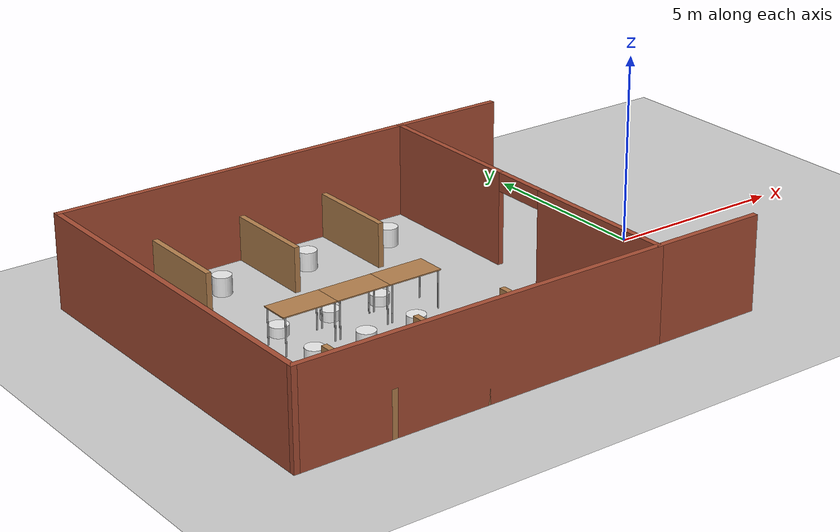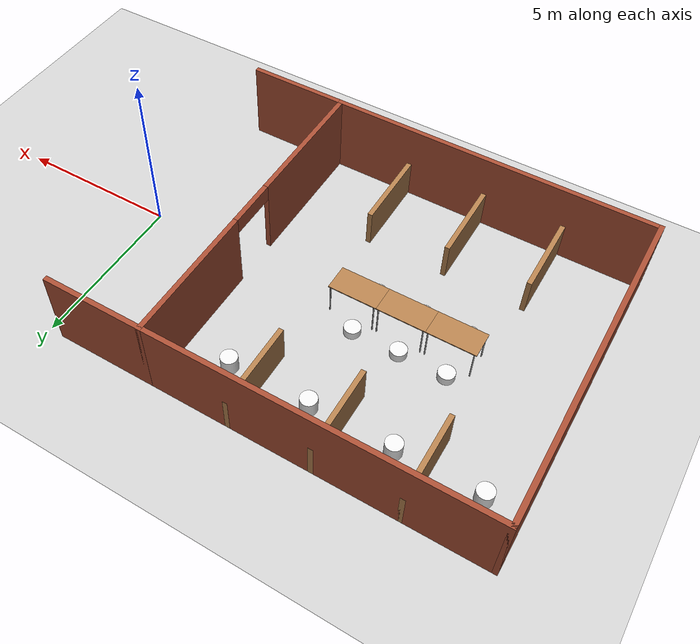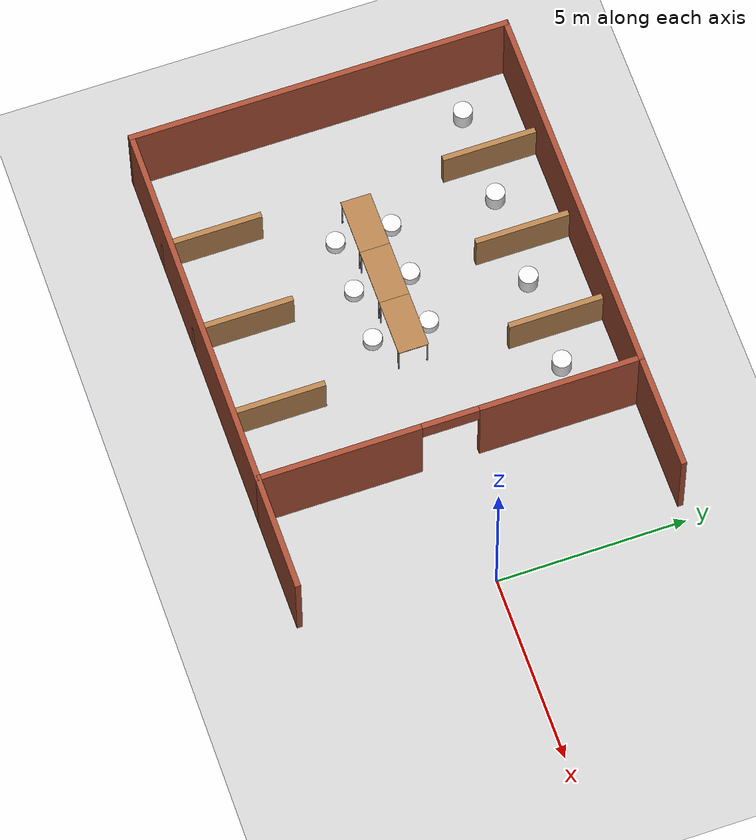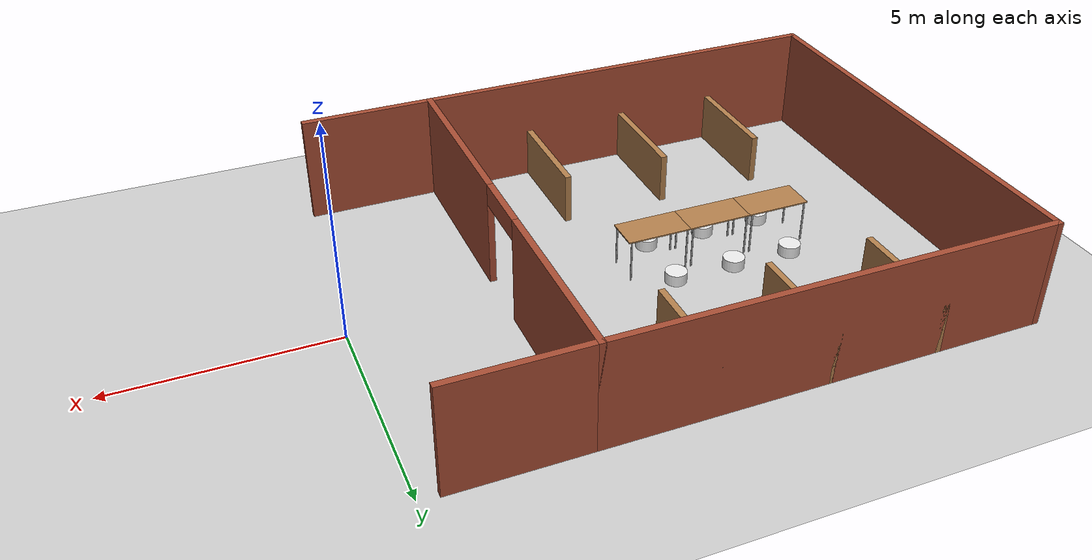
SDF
<sdf version="1.6">
 <world name="default">
  <model name="ground_plane">
   <static>1</static>
   <link name="link">
    <collision name="collision">
     <geometry><plane><normal>0 0 1</normal><size>100 100</size></plane></geometry>
     <surface>
      <contact><collide_bitmask>65535</collide_bitmask></contact>
      <friction><ode><mu>100</mu><mu2>50</mu2></ode></friction>
     </surface>
    </collision>
    <visual name="visual">
     <cast_shadows>0</cast_shadows>
     <geometry><plane><normal>0 0 1</normal><size>100 100</size></plane></geometry>
     <material>
      <script><uri>file://media/materials/scripts/gazebo.material</uri><name>Gazebo/Grey</name></script>
     </material>
    </visual>
   </link>
  </model>
  <model name="cafe2">
   <pose>-7 0 0 0 -0 0</pose>
   <link name="Wall_0">
    <pose>3.5 -0 0 0 -0 1.5708</pose>
    <visual name="Wall_0_Visual_0">
     <pose>-2.9125 0 1.25 0 -0 0</pose>
     <geometry><box><size>4.325 0.15 2.5</size></box></geometry>
     <material>
      <script><uri>file://media/materials/scripts/gazebo.material</uri><name>Gazebo/Bricks</name></script>
      <ambient>1 1 1 1</ambient>
     </material>
     <meta><layer>0</layer></meta>
    </visual>
    <collision name="Wall_0_Collision_0">
     <geometry><box><size>4.325 0.15 2.5</size></box></geometry>
     <pose>-2.9125 0 1.25 0 -0 0</pose>
    </collision>
    <visual name="Wall_0_Visual_1">
     <pose>2.9125 0 1.25 0 -0 0</pose>
     <geometry><box><size>4.325 0.15 2.5</size></box></geometry>
     <material>
      <script><uri>file://media/materials/scripts/gazebo.material</uri><name>Gazebo/Bricks</name></script>
      <ambient>1 1 1 1</ambient>
     </material>
     <meta><layer>0</layer></meta>
    </visual>
    <collision name="Wall_0_Collision_1">
     <geometry><box><size>4.325 0.15 2.5</size></box></geometry>
     <pose>2.9125 0 1.25 0 -0 0</pose>
    </collision>
    <visual name="Wall_0_Visual_2">
     <pose>0 0 2.25 0 -0 0</pose>
     <geometry><box><size>1.5 0.15 0.5</size></box></geometry>
     <material>
      <script><uri>file://media/materials/scripts/gazebo.material</uri><name>Gazebo/Bricks</name></script>
      <ambient>1 1 1 1</ambient>
     </material>
     <meta><layer>0</layer></meta>
    </visual>
    <collision name="Wall_0_Collision_2">
     <geometry><box><size>1.5 0.15 0.5</size></box></geometry>
     <pose>0 0 2.25 0 -0 0</pose>
    </collision>
   </link>
   <link name="Wall_1">
    <collision name="Wall_1_Collision">
     <geometry><box><size>3.15 0.15 2.5</size></box></geometry>
     <pose>0 0 1.25 0 -0 0</pose>
    </collision>
    <visual name="Wall_1_Visual">
     <pose>0 0 1.25 0 -0 0</pose>
     <geometry><box><size>3.15 0.15 2.5</size></box></geometry>
     <material>
      <script><uri>file://media/materials/scripts/gazebo.material</uri><name>Gazebo/Bricks</name></script>
      <ambient>1 1 1 1</ambient>
     </material>
     <meta><layer>0</layer></meta>
    </visual>
    <pose>5 5 0 0 -0 0</pose>
   </link>
   <link name="Wall_11">
    <collision name="Wall_11_Collision">
     <geometry><box><size>2.65 0.15 1.2</size></box></geometry>
     <pose>0 0 0.6 0 -0 0</pose>
    </collision>
    <visual name="Wall_11_Visual">
     <pose>0 0 0.6 0 -0 0</pose>
     <geometry><box><size>2.65 0.15 1.2</size></box></geometry>
     <material>
      <script><uri>file://media/materials/scripts/gazebo.material</uri><name>Gazebo/Wood</name></script>
      <ambient>1 1 1 1</ambient>
     </material>
     <meta><layer>0</layer></meta>
    </visual>
    <pose>-4 3.75 0 0 -0 -1.5708</pose>
   </link>
   <link name="Wall_13">
    <collision name="Wall_13_Collision">
     <geometry><box><size>2.65 0.15 1.2</size></box></geometry>
     <pose>0 0 0.6 0 -0 0</pose>
    </collision>
    <visual name="Wall_13_Visual">
     <pose>0 0 0.6 0 -0 0</pose>
     <geometry><box><size>2.65 0.15 1.2</size></box></geometry>
     <material>
      <script><uri>file://media/materials/scripts/gazebo.material</uri><name>Gazebo/Wood</name></script>
      <ambient>1 1 1 1</ambient>
     </material>
     <meta><layer>0</layer></meta>
    </visual>
    <pose>1 -3.75 0 0 -0 1.5708</pose>
   </link>
   <link name="Wall_15">
    <collision name="Wall_15_Collision">
     <geometry><box><size>2.65 0.15 1.2</size></box></geometry>
     <pose>0 0 0.6 0 -0 0</pose>
    </collision>
    <visual name="Wall_15_Visual">
     <pose>0 0 0.6 0 -0 0</pose>
     <geometry><box><size>2.65 0.15 1.2</size></box></geometry>
     <material>
      <script><uri>file://media/materials/scripts/gazebo.material</uri><name>Gazebo/Wood</name></script>
      <ambient>1 1 1 1</ambient>
     </material>
     <meta><layer>0</layer></meta>
    </visual>
    <pose>-1.5 -3.75 0 0 -0 1.5708</pose>
   </link>
   <link name="Wall_17">
    <collision name="Wall_17_Collision">
     <geometry><box><size>2.65 0.15 1.2</size></box></geometry>
     <pose>0 0 0.6 0 -0 0</pose>
    </collision>
    <visual name="Wall_17_Visual">
     <pose>0 0 0.6 0 -0 0</pose>
     <geometry><box><size>2.65 0.15 1.2</size></box></geometry>
     <material>
      <script><uri>file://media/materials/scripts/gazebo.material</uri><name>Gazebo/Wood</name></script>
      <ambient>1 1 1 1</ambient>
     </material>
     <meta><layer>0</layer></meta>
    </visual>
    <pose>-4 -3.75 0 0 -0 1.5708</pose>
   </link>
   <link name="Wall_19">
    <collision name="Wall_19_Collision">
     <geometry><box><size>2.65 0.15 1.2</size></box></geometry>
     <pose>0 0 0.6 0 -0 0</pose>
    </collision>
    <visual name="Wall_19_Visual">
     <pose>0 0 0.6 0 -0 0</pose>
     <geometry><box><size>2.65 0.15 1.2</size></box></geometry>
     <material>
      <script><uri>file://media/materials/scripts/gazebo.material</uri><name>Gazebo/Wood</name></script>
      <ambient>1 1 1 1</ambient>
     </material>
     <meta><layer>0</layer></meta>
    </visual>
    <pose>-1.5 3.75 0 0 -0 -1.5708</pose>
   </link>
   <link name="Wall_21">
    <collision name="Wall_21_Collision">
     <geometry><box><size>2.65 0.15 1.2</size></box></geometry>
     <pose>0 0 0.6 0 -0 0</pose>
    </collision>
    <visual name="Wall_21_Visual">
     <pose>0 0 0.6 0 -0 0</pose>
     <geometry><box><size>2.65 0.15 1.2</size></box></geometry>
     <material>
      <script><uri>file://media/materials/scripts/gazebo.material</uri><name>Gazebo/Wood</name></script>
      <ambient>1 1 1 1</ambient>
     </material>
     <meta><layer>0</layer></meta>
    </visual>
    <pose>1 3.75 0 0 -0 -1.5708</pose>
   </link>
   <link name="Wall_3">
    <collision name="Wall_3_Collision">
     <geometry><box><size>3.15 0.15 2.5</size></box></geometry>
     <pose>0 0 1.25 0 -0 0</pose>
    </collision>
    <visual name="Wall_3_Visual">
     <pose>0 0 1.25 0 -0 0</pose>
     <geometry><box><size>3.15 0.15 2.5</size></box></geometry>
     <material>
      <script><uri>file://media/materials/scripts/gazebo.material</uri><name>Gazebo/Bricks</name></script>
      <ambient>1 1 1 1</ambient>
     </material>
     <meta><layer>0</layer></meta>
    </visual>
    <pose>5 -5 0 0 -0 0</pose>
   </link>
   <link name="Wall_5">
    <collision name="Wall_5_Collision">
     <geometry><box><size>10.15 0.15 2.5</size></box></geometry>
     <pose>0 0 1.25 0 -0 0</pose>
    </collision>
    <visual name="Wall_5_Visual">
     <pose>0 0 1.25 0 -0 0</pose>
     <geometry><box><size>10.15 0.15 2.5</size></box></geometry>
     <material>
      <script><uri>file://media/materials/scripts/gazebo.material</uri><name>Gazebo/Bricks</name></script>
      <ambient>1 1 1 1</ambient>
     </material>
     <meta><layer>0</layer></meta>
    </visual>
    <pose>-1.5 -5 0 0 -0 3.14159</pose>
   </link>
   <link name="Wall_6">
    <collision name="Wall_6_Collision">
     <geometry><box><size>10.15 0.15 2.5</size></box></geometry>
     <pose>0 0 1.25 0 -0 0</pose>
    </collision>
    <visual name="Wall_6_Visual">
     <pose>0 0 1.25 0 -0 0</pose>
     <geometry><box><size>10.15 0.15 2.5</size></box></geometry>
     <material>
      <script><uri>file://media/materials/scripts/gazebo.material</uri><name>Gazebo/Bricks</name></script>
      <ambient>1 1 1 1</ambient>
     </material>
     <meta><layer>0</layer></meta>
    </visual>
    <pose>-6.5 -0 0 0 -0 1.5708</pose>
   </link>
   <link name="Wall_7">
    <collision name="Wall_7_Collision">
     <geometry><box><size>10.15 0.15 2.5</size></box></geometry>
     <pose>0 0 1.25 0 -0 0</pose>
    </collision>
    <visual name="Wall_7_Visual">
     <pose>0 0 1.25 0 -0 0</pose>
     <geometry><box><size>10.15 0.15 2.5</size></box></geometry>
     <material>
      <script><uri>file://media/materials/scripts/gazebo.material</uri><name>Gazebo/Bricks</name></script>
      <ambient>1 1 1 1</ambient>
     </material>
     <meta><layer>0</layer></meta>
    </visual>
    <pose>-1.5 5 0 0 -0 0</pose>
   </link>
   <static>1</static>
  </model>
  <model name="table_3">
   <static>1</static>
   <link name="link">
    <collision name="surface">
     <pose>0 0 1 0 -0 0</pose>
     <geometry><box><size>1.5 0.8 0.03</size></box></geometry>
     <surface><friction><ode><mu>0.6</mu><mu2>0.6</mu2></ode></friction></surface>
    </collision>
    <visual name="visual1">
     <pose>0 0 1 0 -0 0</pose>
     <geometry><box><size>1.5 0.8 0.03</size></box></geometry>
     <material>
      <script><uri>file://media/materials/scripts/gazebo.material</uri><name>Gazebo/Wood</name></script>
     </material>
    </visual>
    <collision name="front_left_leg">
     <pose>0.68 0.38 0.5 0 -0 0</pose>
     <geometry><cylinder><radius>0.02</radius><length>1</length></cylinder></geometry>
    </collision>
    <visual name="front_left_leg">
     <pose>0.68 0.38 0.5 0 -0 0</pose>
     <geometry><cylinder><radius>0.02</radius><length>1</length></cylinder></geometry>
     <material>
      <script><uri>file://media/materials/scripts/gazebo.material</uri><name>Gazebo/Grey</name></script>
     </material>
    </visual>
    <collision name="front_right_leg">
     <pose>0.68 -0.38 0.5 0 -0 0</pose>
     <geometry><cylinder><radius>0.02</radius><length>1</length></cylinder></geometry>
    </collision>
    <visual name="front_right_leg">
     <pose>0.68 -0.38 0.5 0 -0 0</pose>
     <geometry><cylinder><radius>0.02</radius><length>1</length></cylinder></geometry>
     <material>
      <script><uri>file://media/materials/scripts/gazebo.material</uri><name>Gazebo/Grey</name></script>
     </material>
    </visual>
    <collision name="back_right_leg">
     <pose>-0.68 -0.38 0.5 0 -0 0</pose>
     <geometry><cylinder><radius>0.02</radius><length>1</length></cylinder></geometry>
    </collision>
    <visual name="back_right_leg">
     <pose>-0.68 -0.38 0.5 0 -0 0</pose>
     <geometry><cylinder><radius>0.02</radius><length>1</length></cylinder></geometry>
     <material>
      <script><uri>file://media/materials/scripts/gazebo.material</uri><name>Gazebo/Grey</name></script>
     </material>
    </visual>
    <collision name="back_left_leg">
     <pose>-0.68 0.38 0.5 0 -0 0</pose>
     <geometry><cylinder><radius>0.02</radius><length>1</length></cylinder></geometry>
    </collision>
    <visual name="back_left_leg">
     <pose>-0.68 0.38 0.5 0 -0 0</pose>
     <geometry><cylinder><radius>0.02</radius><length>1</length></cylinder></geometry>
     <material>
      <script><uri>file://media/materials/scripts/gazebo.material</uri><name>Gazebo/Grey</name></script>
     </material>
    </visual>
   </link>
   <pose>-7 0 0 0 -0 0</pose>
  </model>
  <model name="table_4">
   <static>1</static>
   <link name="link">
    <collision name="surface">
     <pose>0 0 1 0 -0 0</pose>
     <geometry><box><size>1.5 0.8 0.03</size></box></geometry>
     <surface><friction><ode><mu>0.6</mu><mu2>0.6</mu2></ode></friction></surface>
    </collision>
    <visual name="visual1">
     <pose>0 0 1 0 -0 0</pose>
     <geometry><box><size>1.5 0.8 0.03</size></box></geometry>
     <material>
      <script><uri>file://media/materials/scripts/gazebo.material</uri><name>Gazebo/Wood</name></script>
     </material>
    </visual>
    <collision name="front_left_leg">
     <pose>0.68 0.38 0.5 0 -0 0</pose>
     <geometry><cylinder><radius>0.02</radius><length>1</length></cylinder></geometry>
    </collision>
    <visual name="front_left_leg">
     <pose>0.68 0.38 0.5 0 -0 0</pose>
     <geometry><cylinder><radius>0.02</radius><length>1</length></cylinder></geometry>
     <material>
      <script><uri>file://media/materials/scripts/gazebo.material</uri><name>Gazebo/Grey</name></script>
     </material>
    </visual>
    <collision name="front_right_leg">
     <pose>0.68 -0.38 0.5 0 -0 0</pose>
     <geometry><cylinder><radius>0.02</radius><length>1</length></cylinder></geometry>
    </collision>
    <visual name="front_right_leg">
     <pose>0.68 -0.38 0.5 0 -0 0</pose>
     <geometry><cylinder><radius>0.02</radius><length>1</length></cylinder></geometry>
     <material>
      <script><uri>file://media/materials/scripts/gazebo.material</uri><name>Gazebo/Grey</name></script>
     </material>
    </visual>
    <collision name="back_right_leg">
     <pose>-0.68 -0.38 0.5 0 -0 0</pose>
     <geometry><cylinder><radius>0.02</radius><length>1</length></cylinder></geometry>
    </collision>
    <visual name="back_right_leg">
     <pose>-0.68 -0.38 0.5 0 -0 0</pose>
     <geometry><cylinder><radius>0.02</radius><length>1</length></cylinder></geometry>
     <material>
      <script><uri>file://media/materials/scripts/gazebo.material</uri><name>Gazebo/Grey</name></script>
     </material>
    </visual>
    <collision name="back_left_leg">
     <pose>-0.68 0.38 0.5 0 -0 0</pose>
     <geometry><cylinder><radius>0.02</radius><length>1</length></cylinder></geometry>
    </collision>
    <visual name="back_left_leg">
     <pose>-0.68 0.38 0.5 0 -0 0</pose>
     <geometry><cylinder><radius>0.02</radius><length>1</length></cylinder></geometry>
     <material>
      <script><uri>file://media/materials/scripts/gazebo.material</uri><name>Gazebo/Grey</name></script>
     </material>
    </visual>
   </link>
   <pose>-8.5 0 0 0 -0 0</pose>
  </model>
  <model name="table_5">
   <static>1</static>
   <link name="link">
    <collision name="surface">
     <pose>0 0 1 0 -0 0</pose>
     <geometry><box><size>1.5 0.8 0.03</size></box></geometry>
     <surface><friction><ode><mu>0.6</mu><mu2>0.6</mu2></ode></friction></surface>
    </collision>
    <visual name="visual1">
     <pose>0 0 1 0 -0 0</pose>
     <geometry><box><size>1.5 0.8 0.03</size></box></geometry>
     <material>
      <script><uri>file://media/materials/scripts/gazebo.material</uri><name>Gazebo/Wood</name></script>
     </material>
    </visual>
    <collision name="front_left_leg">
     <pose>0.68 0.38 0.5 0 -0 0</pose>
     <geometry><cylinder><radius>0.02</radius><length>1</length></cylinder></geometry>
    </collision>
    <visual name="front_left_leg">
     <pose>0.68 0.38 0.5 0 -0 0</pose>
     <geometry><cylinder><radius>0.02</radius><length>1</length></cylinder></geometry>
     <material>
      <script><uri>file://media/materials/scripts/gazebo.material</uri><name>Gazebo/Grey</name></script>
     </material>
    </visual>
    <collision name="front_right_leg">
     <pose>0.68 -0.38 0.5 0 -0 0</pose>
     <geometry><cylinder><radius>0.02</radius><length>1</length></cylinder></geometry>
    </collision>
    <visual name="front_right_leg">
     <pose>0.68 -0.38 0.5 0 -0 0</pose>
     <geometry><cylinder><radius>0.02</radius><length>1</length></cylinder></geometry>
     <material>
      <script><uri>file://media/materials/scripts/gazebo.material</uri><name>Gazebo/Grey</name></script>
     </material>
    </visual>
    <collision name="back_right_leg">
     <pose>-0.68 -0.38 0.5 0 -0 0</pose>
     <geometry><cylinder><radius>0.02</radius><length>1</length></cylinder></geometry>
    </collision>
    <visual name="back_right_leg">
     <pose>-0.68 -0.38 0.5 0 -0 0</pose>
     <geometry><cylinder><radius>0.02</radius><length>1</length></cylinder></geometry>
     <material>
      <script><uri>file://media/materials/scripts/gazebo.material</uri><name>Gazebo/Grey</name></script>
     </material>
    </visual>
    <collision name="back_left_leg">
     <pose>-0.68 0.38 0.5 0 -0 0</pose>
     <geometry><cylinder><radius>0.02</radius><length>1</length></cylinder></geometry>
    </collision>
    <visual name="back_left_leg">
     <pose>-0.68 0.38 0.5 0 -0 0</pose>
     <geometry><cylinder><radius>0.02</radius><length>1</length></cylinder></geometry>
     <material>
      <script><uri>file://media/materials/scripts/gazebo.material</uri><name>Gazebo/Grey</name></script>
     </material>
    </visual>
   </link>
   <pose>-10 0 0 0 -0 0</pose>
  </model>
  <model name="chair6">
   <link name="link_1">
    <inertial>
     <mass>1</mass>
     <inertia><ixx>0.145833</ixx><ixy>0</ixy><ixz>0</ixz><iyy>0.145833</iyy><iyz>0</iyz><izz>0.125</izz></inertia>
    </inertial>
    <visual name="visual">
     <geometry><cylinder><radius>0.25</radius><length>0.5</length></cylinder></geometry>
     <material>
      <lighting>1</lighting>
      <script><uri>file://media/materials/scripts/gazebo.material</uri><name>Gazebo/White</name></script>
      <shader type="vertex"><normal_map>__default__</normal_map></shader>
      <ambient>0.9 0.7 0.5 1</ambient>
      <diffuse>0.7 0.7 0.7 1</diffuse>
      <specular>0.01 0.01 0.01 1</specular>
      <emissive>0 0 0 1</emissive>
     </material>
    </visual>
    <collision name="collision">
     <geometry><cylinder><radius>0.25</radius><length>0.5</length></cylinder></geometry>
     <surface>
      <friction>
       <ode><mu>1</mu><mu2>1</mu2><fdir1>0 0 0</fdir1><slip1>0</slip1><slip2>0</slip2></ode>
       <torsional>
        <coefficient>1</coefficient>
        <patch_radius>0</patch_radius>
        <surface_radius>0</surface_radius>
        <use_patch_radius>1</use_patch_radius>
        <ode><slip>0</slip></ode>
       </torsional>
      </friction>
      <bounce><restitution_coefficient>0</restitution_coefficient><threshold>1e+06</threshold></bounce>
      <contact>
       <collide_without_contact>0</collide_without_contact>
       <collide_without_contact_bitmask>1</collide_without_contact_bitmask>
       <collide_bitmask>1</collide_bitmask>
       <ode>
        <soft_cfm>0</soft_cfm>
        <soft_erp>0.2</soft_erp>
        <kp>1e+13</kp>
        <kd>1</kd>
        <max_vel>0.01</max_vel>
        <min_depth>0</min_depth>
       </ode>
       <bullet>
        <split_impulse>1</split_impulse>
        <split_impulse_penetration_threshold>-0.01</split_impulse_penetration_threshold>
        <soft_cfm>0</soft_cfm>
        <soft_erp>0.2</soft_erp>
        <kp>1e+13</kp>
        <kd>1</kd>
       </bullet>
      </contact>
     </surface>
    </collision>
   </link>
   <link name="link_1_clone">
    <inertial>
     <mass>1</mass>
     <inertia><ixx>0.145833</ixx><ixy>0</ixy><ixz>0</ixz><iyy>0.145833</iyy><iyz>0</iyz><izz>0.125</izz></inertia>
    </inertial>
    <pose>-2.5 -0 0 0 -0 0</pose>
    <visual name="visual">
     <geometry><cylinder><radius>0.25</radius><length>0.5</length></cylinder></geometry>
     <material>
      <lighting>1</lighting>
      <script><uri>file://media/materials/scripts/gazebo.material</uri><name>Gazebo/White</name></script>
      <shader type="vertex"><normal_map>__default__</normal_map></shader>
      <ambient>0.9 0.7 0.5 1</ambient>
      <diffuse>0.7 0.7 0.7 1</diffuse>
      <specular>0.01 0.01 0.01 1</specular>
      <emissive>0 0 0 1</emissive>
     </material>
    </visual>
    <collision name="collision">
     <geometry><cylinder><radius>0.25</radius><length>0.5</length></cylinder></geometry>
     <surface>
      <friction>
       <ode><mu>1</mu><mu2>1</mu2><fdir1>0 0 0</fdir1><slip1>0</slip1><slip2>0</slip2></ode>
       <torsional>
        <coefficient>1</coefficient>
        <patch_radius>0</patch_radius>
        <surface_radius>0</surface_radius>
        <use_patch_radius>1</use_patch_radius>
        <ode><slip>0</slip></ode>
       </torsional>
      </friction>
      <bounce><restitution_coefficient>0</restitution_coefficient><threshold>1e+06</threshold></bounce>
      <contact>
       <collide_without_contact>0</collide_without_contact>
       <collide_without_contact_bitmask>1</collide_without_contact_bitmask>
       <collide_bitmask>1</collide_bitmask>
       <ode>
        <soft_cfm>0</soft_cfm>
        <soft_erp>0.2</soft_erp>
        <kp>1e+13</kp>
        <kd>1</kd>
        <max_vel>0.01</max_vel>
        <min_depth>0</min_depth>
       </ode>
       <bullet>
        <split_impulse>1</split_impulse>
        <split_impulse_penetration_threshold>-0.01</split_impulse_penetration_threshold>
        <soft_cfm>0</soft_cfm>
        <soft_erp>0.2</soft_erp>
        <kp>1e+13</kp>
        <kd>1</kd>
       </bullet>
      </contact>
     </surface>
    </collision>
   </link>
   <link name="link_1_clone_0_clone">
    <inertial>
     <mass>1</mass>
     <inertia><ixx>0.145833</ixx><ixy>0</ixy><ixz>0</ixz><iyy>0.145833</iyy><iyz>0</iyz><izz>0.125</izz></inertia>
    </inertial>
    <pose>-5 -0 0 0 -0 0</pose>
    <visual name="visual">
     <geometry><cylinder><radius>0.25</radius><length>0.5</length></cylinder></geometry>
     <material>
      <lighting>1</lighting>
      <script><uri>file://media/materials/scripts/gazebo.material</uri><name>Gazebo/White</name></script>
      <shader type="vertex"><normal_map>__default__</normal_map></shader>
      <ambient>0.9 0.7 0.5 1</ambient>
      <diffuse>0.7 0.7 0.7 1</diffuse>
      <specular>0.01 0.01 0.01 1</specular>
      <emissive>0 0 0 1</emissive>
     </material>
    </visual>
    <collision name="collision">
     <geometry><cylinder><radius>0.25</radius><length>0.5</length></cylinder></geometry>
     <surface>
      <friction>
       <ode><mu>1</mu><mu2>1</mu2><fdir1>0 0 0</fdir1><slip1>0</slip1><slip2>0</slip2></ode>
       <torsional>
        <coefficient>1</coefficient>
        <patch_radius>0</patch_radius>
        <surface_radius>0</surface_radius>
        <use_patch_radius>1</use_patch_radius>
        <ode><slip>0</slip></ode>
       </torsional>
      </friction>
      <bounce><restitution_coefficient>0</restitution_coefficient><threshold>1e+06</threshold></bounce>
      <contact>
       <collide_without_contact>0</collide_without_contact>
       <collide_without_contact_bitmask>1</collide_without_contact_bitmask>
       <collide_bitmask>1</collide_bitmask>
       <ode>
        <soft_cfm>0</soft_cfm>
        <soft_erp>0.2</soft_erp>
        <kp>1e+13</kp>
        <kd>1</kd>
        <max_vel>0.01</max_vel>
        <min_depth>0</min_depth>
       </ode>
       <bullet>
        <split_impulse>1</split_impulse>
        <split_impulse_penetration_threshold>-0.01</split_impulse_penetration_threshold>
        <soft_cfm>0</soft_cfm>
        <soft_erp>0.2</soft_erp>
        <kp>1e+13</kp>
        <kd>1</kd>
       </bullet>
      </contact>
     </surface>
    </collision>
   </link>
   <link name="link_1_clone_0_clone_clone">
    <inertial>
     <mass>1</mass>
     <inertia><ixx>0.145833</ixx><ixy>0</ixy><ixz>0</ixz><iyy>0.145833</iyy><iyz>0</iyz><izz>0.125</izz></inertia>
    </inertial>
    <pose>-7.5 -0 -0 0 -0 0</pose>
    <visual name="visual">
     <geometry><cylinder><radius>0.25</radius><length>0.5</length></cylinder></geometry>
     <material>
      <lighting>1</lighting>
      <script><uri>file://media/materials/scripts/gazebo.material</uri><name>Gazebo/White</name></script>
      <shader type="vertex"><normal_map>__default__</normal_map></shader>
      <ambient>0.9 0.7 0.5 1</ambient>
      <diffuse>0.7 0.7 0.7 1</diffuse>
      <specular>0.01 0.01 0.01 1</specular>
      <emissive>0 0 0 1</emissive>
     </material>
    </visual>
    <collision name="collision">
     <geometry><cylinder><radius>0.25</radius><length>0.5</length></cylinder></geometry>
     <surface>
      <friction>
       <ode><mu>1</mu><mu2>1</mu2><fdir1>0 0 0</fdir1><slip1>0</slip1><slip2>0</slip2></ode>
       <torsional>
        <coefficient>1</coefficient>
        <patch_radius>0</patch_radius>
        <surface_radius>0</surface_radius>
        <use_patch_radius>1</use_patch_radius>
        <ode><slip>0</slip></ode>
       </torsional>
      </friction>
      <bounce><restitution_coefficient>0</restitution_coefficient><threshold>1e+06</threshold></bounce>
      <contact>
       <collide_without_contact>0</collide_without_contact>
       <collide_without_contact_bitmask>1</collide_without_contact_bitmask>
       <collide_bitmask>1</collide_bitmask>
       <ode>
        <soft_cfm>0</soft_cfm>
        <soft_erp>0.2</soft_erp>
        <kp>1e+13</kp>
        <kd>1</kd>
        <max_vel>0.01</max_vel>
        <min_depth>0</min_depth>
       </ode>
       <bullet>
        <split_impulse>1</split_impulse>
        <split_impulse_penetration_threshold>-0.01</split_impulse_penetration_threshold>
        <soft_cfm>0</soft_cfm>
        <soft_erp>0.2</soft_erp>
        <kp>1e+13</kp>
        <kd>1</kd>
       </bullet>
      </contact>
     </surface>
    </collision>
   </link>
   <static>0</static>
   <pose>-5 3.5 0.249991 0 -0 0</pose>
  </model>
  <model name="chair3_2">
   <link name="link_1">
    <inertial>
     <mass>1</mass>
     <inertia><ixx>0.145833</ixx><ixy>0</ixy><ixz>0</ixz><iyy>0.145833</iyy><iyz>0</iyz><izz>0.125</izz></inertia>
    </inertial>
    <visual name="visual">
     <geometry><cylinder><radius>0.25</radius><length>0.5</length></cylinder></geometry>
     <material>
      <lighting>1</lighting>
      <script><uri>file://media/materials/scripts/gazebo.material</uri><name>Gazebo/White</name></script>
      <shader type="vertex"><normal_map>__default__</normal_map></shader>
      <ambient>0.9 0.7 0.5 1</ambient>
      <diffuse>0.7 0.7 0.7 1</diffuse>
      <specular>0.01 0.01 0.01 1</specular>
      <emissive>0 0 0 1</emissive>
     </material>
    </visual>
    <collision name="collision">
     <geometry><cylinder><radius>0.25</radius><length>0.5</length></cylinder></geometry>
     <surface>
      <friction>
       <ode><mu>1</mu><mu2>1</mu2><fdir1>0 0 0</fdir1><slip1>0</slip1><slip2>0</slip2></ode>
       <torsional>
        <coefficient>1</coefficient>
        <patch_radius>0</patch_radius>
        <surface_radius>0</surface_radius>
        <use_patch_radius>1</use_patch_radius>
        <ode><slip>0</slip></ode>
       </torsional>
      </friction>
      <bounce><restitution_coefficient>0</restitution_coefficient><threshold>1e+06</threshold></bounce>
      <contact>
       <collide_without_contact>0</collide_without_contact>
       <collide_without_contact_bitmask>1</collide_without_contact_bitmask>
       <collide_bitmask>1</collide_bitmask>
       <ode>
        <soft_cfm>0</soft_cfm>
        <soft_erp>0.2</soft_erp>
        <kp>1e+13</kp>
        <kd>1</kd>
        <max_vel>0.01</max_vel>
        <min_depth>0</min_depth>
       </ode>
       <bullet>
        <split_impulse>1</split_impulse>
        <split_impulse_penetration_threshold>-0.01</split_impulse_penetration_threshold>
        <soft_cfm>0</soft_cfm>
        <soft_erp>0.2</soft_erp>
        <kp>1e+13</kp>
        <kd>1</kd>
       </bullet>
      </contact>
     </surface>
    </collision>
   </link>
   <link name="link_1_clone">
    <inertial>
     <mass>1</mass>
     <inertia><ixx>0.145833</ixx><ixy>0</ixy><ixz>0</ixz><iyy>0.145833</iyy><iyz>0</iyz><izz>0.125</izz></inertia>
    </inertial>
    <pose>0 -1.5 0 0 -0 0</pose>
    <visual name="visual">
     <geometry><cylinder><radius>0.25</radius><length>0.5</length></cylinder></geometry>
     <material>
      <lighting>1</lighting>
      <script><uri>file://media/materials/scripts/gazebo.material</uri><name>Gazebo/White</name></script>
      <shader type="vertex"><normal_map>__default__</normal_map></shader>
      <ambient>0.9 0.7 0.5 1</ambient>
      <diffuse>0.7 0.7 0.7 1</diffuse>
      <specular>0.01 0.01 0.01 1</specular>
      <emissive>0 0 0 1</emissive>
     </material>
    </visual>
    <collision name="collision">
     <geometry><cylinder><radius>0.25</radius><length>0.5</length></cylinder></geometry>
     <surface>
      <friction>
       <ode><mu>1</mu><mu2>1</mu2><fdir1>0 0 0</fdir1><slip1>0</slip1><slip2>0</slip2></ode>
       <torsional>
        <coefficient>1</coefficient>
        <patch_radius>0</patch_radius>
        <surface_radius>0</surface_radius>
        <use_patch_radius>1</use_patch_radius>
        <ode><slip>0</slip></ode>
       </torsional>
      </friction>
      <bounce><restitution_coefficient>0</restitution_coefficient><threshold>1e+06</threshold></bounce>
      <contact>
       <collide_without_contact>0</collide_without_contact>
       <collide_without_contact_bitmask>1</collide_without_contact_bitmask>
       <collide_bitmask>1</collide_bitmask>
       <ode>
        <soft_cfm>0</soft_cfm>
        <soft_erp>0.2</soft_erp>
        <kp>1e+13</kp>
        <kd>1</kd>
        <max_vel>0.01</max_vel>
        <min_depth>0</min_depth>
       </ode>
       <bullet>
        <split_impulse>1</split_impulse>
        <split_impulse_penetration_threshold>-0.01</split_impulse_penetration_threshold>
        <soft_cfm>0</soft_cfm>
        <soft_erp>0.2</soft_erp>
        <kp>1e+13</kp>
        <kd>1</kd>
       </bullet>
      </contact>
     </surface>
    </collision>
   </link>
   <static>0</static>
   <pose>-7.25 0.75 0 0 -0 0</pose>
  </model>
  <model name="chair3_3">
   <link name="link_1">
    <inertial>
     <mass>1</mass>
     <inertia><ixx>0.145833</ixx><ixy>0</ixy><ixz>0</ixz><iyy>0.145833</iyy><iyz>0</iyz><izz>0.125</izz></inertia>
    </inertial>
    <visual name="visual">
     <geometry><cylinder><radius>0.25</radius><length>0.5</length></cylinder></geometry>
     <material>
      <lighting>1</lighting>
      <script><uri>file://media/materials/scripts/gazebo.material</uri><name>Gazebo/White</name></script>
      <shader type="vertex"><normal_map>__default__</normal_map></shader>
      <ambient>0.9 0.7 0.5 1</ambient>
      <diffuse>0.7 0.7 0.7 1</diffuse>
      <specular>0.01 0.01 0.01 1</specular>
      <emissive>0 0 0 1</emissive>
     </material>
    </visual>
    <collision name="collision">
     <geometry><cylinder><radius>0.25</radius><length>0.5</length></cylinder></geometry>
     <surface>
      <friction>
       <ode><mu>1</mu><mu2>1</mu2><fdir1>0 0 0</fdir1><slip1>0</slip1><slip2>0</slip2></ode>
       <torsional>
        <coefficient>1</coefficient>
        <patch_radius>0</patch_radius>
        <surface_radius>0</surface_radius>
        <use_patch_radius>1</use_patch_radius>
        <ode><slip>0</slip></ode>
       </torsional>
      </friction>
      <bounce><restitution_coefficient>0</restitution_coefficient><threshold>1e+06</threshold></bounce>
      <contact>
       <collide_without_contact>0</collide_without_contact>
       <collide_without_contact_bitmask>1</collide_without_contact_bitmask>
       <collide_bitmask>1</collide_bitmask>
       <ode>
        <soft_cfm>0</soft_cfm>
        <soft_erp>0.2</soft_erp>
        <kp>1e+13</kp>
        <kd>1</kd>
        <max_vel>0.01</max_vel>
        <min_depth>0</min_depth>
       </ode>
       <bullet>
        <split_impulse>1</split_impulse>
        <split_impulse_penetration_threshold>-0.01</split_impulse_penetration_threshold>
        <soft_cfm>0</soft_cfm>
        <soft_erp>0.2</soft_erp>
        <kp>1e+13</kp>
        <kd>1</kd>
       </bullet>
      </contact>
     </surface>
    </collision>
   </link>
   <link name="link_1_clone">
    <inertial>
     <mass>1</mass>
     <inertia><ixx>0.145833</ixx><ixy>0</ixy><ixz>0</ixz><iyy>0.145833</iyy><iyz>0</iyz><izz>0.125</izz></inertia>
    </inertial>
    <pose>0 -1.5 0 0 -0 0</pose>
    <visual name="visual">
     <geometry><cylinder><radius>0.25</radius><length>0.5</length></cylinder></geometry>
     <material>
      <lighting>1</lighting>
      <script><uri>file://media/materials/scripts/gazebo.material</uri><name>Gazebo/White</name></script>
      <shader type="vertex"><normal_map>__default__</normal_map></shader>
      <ambient>0.9 0.7 0.5 1</ambient>
      <diffuse>0.7 0.7 0.7 1</diffuse>
      <specular>0.01 0.01 0.01 1</specular>
      <emissive>0 0 0 1</emissive>
     </material>
    </visual>
    <collision name="collision">
     <geometry><cylinder><radius>0.25</radius><length>0.5</length></cylinder></geometry>
     <surface>
      <friction>
       <ode><mu>1</mu><mu2>1</mu2><fdir1>0 0 0</fdir1><slip1>0</slip1><slip2>0</slip2></ode>
       <torsional>
        <coefficient>1</coefficient>
        <patch_radius>0</patch_radius>
        <surface_radius>0</surface_radius>
        <use_patch_radius>1</use_patch_radius>
        <ode><slip>0</slip></ode>
       </torsional>
      </friction>
      <bounce><restitution_coefficient>0</restitution_coefficient><threshold>1e+06</threshold></bounce>
      <contact>
       <collide_without_contact>0</collide_without_contact>
       <collide_without_contact_bitmask>1</collide_without_contact_bitmask>
       <collide_bitmask>1</collide_bitmask>
       <ode>
        <soft_cfm>0</soft_cfm>
        <soft_erp>0.2</soft_erp>
        <kp>1e+13</kp>
        <kd>1</kd>
        <max_vel>0.01</max_vel>
        <min_depth>0</min_depth>
       </ode>
       <bullet>
        <split_impulse>1</split_impulse>
        <split_impulse_penetration_threshold>-0.01</split_impulse_penetration_threshold>
        <soft_cfm>0</soft_cfm>
        <soft_erp>0.2</soft_erp>
        <kp>1e+13</kp>
        <kd>1</kd>
       </bullet>
      </contact>
     </surface>
    </collision>
   </link>
   <static>0</static>
   <pose>-8.7 0.75 0 0 -0 0</pose>
  </model>
  <model name="chair3_4">
   <link name="link_1">
    <inertial>
     <mass>1</mass>
     <inertia><ixx>0.145833</ixx><ixy>0</ixy><ixz>0</ixz><iyy>0.145833</iyy><iyz>0</iyz><izz>0.125</izz></inertia>
    </inertial>
    <visual name="visual">
     <geometry><cylinder><radius>0.25</radius><length>0.5</length></cylinder></geometry>
     <material>
      <lighting>1</lighting>
      <script><uri>file://media/materials/scripts/gazebo.material</uri><name>Gazebo/White</name></script>
      <shader type="vertex"><normal_map>__default__</normal_map></shader>
      <ambient>0.9 0.7 0.5 1</ambient>
      <diffuse>0.7 0.7 0.7 1</diffuse>
      <specular>0.01 0.01 0.01 1</specular>
      <emissive>0 0 0 1</emissive>
     </material>
    </visual>
    <collision name="collision">
     <geometry><cylinder><radius>0.25</radius><length>0.5</length></cylinder></geometry>
     <surface>
      <friction>
       <ode><mu>1</mu><mu2>1</mu2><fdir1>0 0 0</fdir1><slip1>0</slip1><slip2>0</slip2></ode>
       <torsional>
        <coefficient>1</coefficient>
        <patch_radius>0</patch_radius>
        <surface_radius>0</surface_radius>
        <use_patch_radius>1</use_patch_radius>
        <ode><slip>0</slip></ode>
       </torsional>
      </friction>
      <bounce><restitution_coefficient>0</restitution_coefficient><threshold>1e+06</threshold></bounce>
      <contact>
       <collide_without_contact>0</collide_without_contact>
       <collide_without_contact_bitmask>1</collide_without_contact_bitmask>
       <collide_bitmask>1</collide_bitmask>
       <ode>
        <soft_cfm>0</soft_cfm>
        <soft_erp>0.2</soft_erp>
        <kp>1e+13</kp>
        <kd>1</kd>
        <max_vel>0.01</max_vel>
        <min_depth>0</min_depth>
       </ode>
       <bullet>
        <split_impulse>1</split_impulse>
        <split_impulse_penetration_threshold>-0.01</split_impulse_penetration_threshold>
        <soft_cfm>0</soft_cfm>
        <soft_erp>0.2</soft_erp>
        <kp>1e+13</kp>
        <kd>1</kd>
       </bullet>
      </contact>
     </surface>
    </collision>
   </link>
   <link name="link_1_clone">
    <inertial>
     <mass>1</mass>
     <inertia><ixx>0.145833</ixx><ixy>0</ixy><ixz>0</ixz><iyy>0.145833</iyy><iyz>0</iyz><izz>0.125</izz></inertia>
    </inertial>
    <pose>0 -1.5 0 0 -0 0</pose>
    <visual name="visual">
     <geometry><cylinder><radius>0.25</radius><length>0.5</length></cylinder></geometry>
     <material>
      <lighting>1</lighting>
      <script><uri>file://media/materials/scripts/gazebo.material</uri><name>Gazebo/White</name></script>
      <shader type="vertex"><normal_map>__default__</normal_map></shader>
      <ambient>0.9 0.7 0.5 1</ambient>
      <diffuse>0.7 0.7 0.7 1</diffuse>
      <specular>0.01 0.01 0.01 1</specular>
      <emissive>0 0 0 1</emissive>
     </material>
    </visual>
    <collision name="collision">
     <geometry><cylinder><radius>0.25</radius><length>0.5</length></cylinder></geometry>
     <surface>
      <friction>
       <ode><mu>1</mu><mu2>1</mu2><fdir1>0 0 0</fdir1><slip1>0</slip1><slip2>0</slip2></ode>
       <torsional>
        <coefficient>1</coefficient>
        <patch_radius>0</patch_radius>
        <surface_radius>0</surface_radius>
        <use_patch_radius>1</use_patch_radius>
        <ode><slip>0</slip></ode>
       </torsional>
      </friction>
      <bounce><restitution_coefficient>0</restitution_coefficient><threshold>1e+06</threshold></bounce>
      <contact>
       <collide_without_contact>0</collide_without_contact>
       <collide_without_contact_bitmask>1</collide_without_contact_bitmask>
       <collide_bitmask>1</collide_bitmask>
       <ode>
        <soft_cfm>0</soft_cfm>
        <soft_erp>0.2</soft_erp>
        <kp>1e+13</kp>
        <kd>1</kd>
        <max_vel>0.01</max_vel>
        <min_depth>0</min_depth>
       </ode>
       <bullet>
        <split_impulse>1</split_impulse>
        <split_impulse_penetration_threshold>-0.01</split_impulse_penetration_threshold>
        <soft_cfm>0</soft_cfm>
        <soft_erp>0.2</soft_erp>
        <kp>1e+13</kp>
        <kd>1</kd>
       </bullet>
      </contact>
     </surface>
    </collision>
   </link>
   <static>0</static>
   <pose>-10.15 0.75 0 0 -0 0</pose>
  </model>
 </world>
</sdf>
